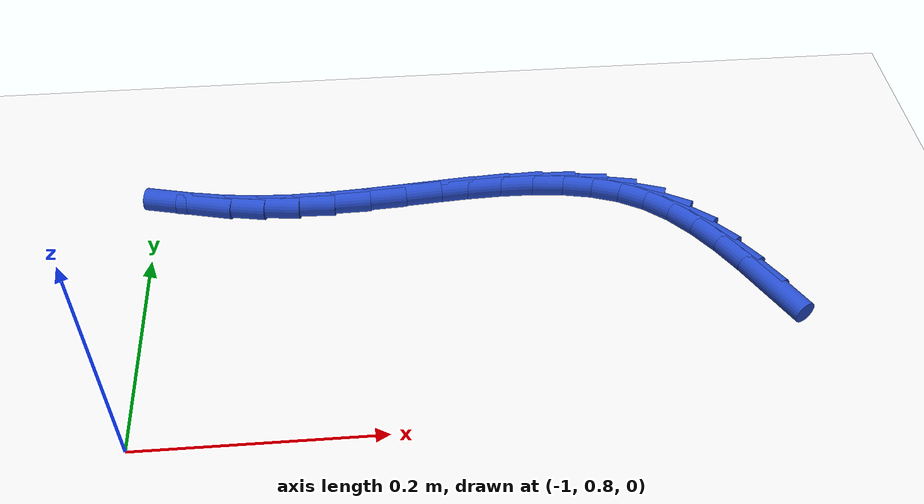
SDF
<sdf version="1.6">
 <world name="default">
  <model name="ground_plane">
   <static>1</static>
   <link name="link">
    <collision name="collision">
     <geometry><plane><normal>0 0 1</normal><size>100 100</size></plane></geometry>
     <surface><friction><ode><mu>100</mu><mu2>50</mu2></ode></friction></surface>
    </collision>
    <visual name="visual">
     <cast_shadows>0</cast_shadows>
     <geometry><plane><normal>0 0 1</normal><size>100 100</size></plane></geometry>
     <material>
      <script><uri>file://media/materials/scripts/gazebo.material</uri><name>Gazebo/WhiteGlow</name></script>
     </material>
    </visual>
   </link>
  </model>
  <model name="line">
   <link name="link_36">
    <pose>-0.47497138765835084 0.9221795700862281 0.01 0 1.57 -1.0694946534134544</pose>
    <collision name="collision">
     <geometry><cylinder><radius>0.01</radius><length>0.08</length></cylinder></geometry>
    </collision>
    <visual name="visual">
     <material>
      <script><name>Gazebo/Blue</name><uri>file://media/materials/scripts/gazebo.material</uri></script>
     </material>
     <geometry><cylinder><radius>0.01</radius><length>0.08</length></cylinder></geometry>
    </visual>
   </link>
   <link name="link_37">
    <pose>-0.48970142941198425 0.949059510149928 0.01 0 1.57 -1.0229506416498728</pose>
    <collision name="collision">
     <geometry><cylinder><radius>0.01</radius><length>0.08</length></cylinder></geometry>
    </collision>
    <visual name="visual">
     <material>
      <script><name>Gazebo/Blue</name><uri>file://media/materials/scripts/gazebo.material</uri></script>
     </material>
     <geometry><cylinder><radius>0.01</radius><length>0.08</length></cylinder></geometry>
    </visual>
   </link>
   <link name="link_38">
    <pose>-0.5051154790153239 0.9743224387573374 0.01 0 1.57 -0.9478539412121977</pose>
    <collision name="collision">
     <geometry><cylinder><radius>0.01</radius><length>0.08</length></cylinder></geometry>
    </collision>
    <visual name="visual">
     <material>
      <script><name>Gazebo/Blue</name><uri>file://media/materials/scripts/gazebo.material</uri></script>
     </material>
     <geometry><cylinder><radius>0.01</radius><length>0.08</length></cylinder></geometry>
    </visual>
   </link>
   <link name="link_39">
    <pose>-0.5216358255652217 0.9973197348024196 0.01 0 1.57 -0.8386915914948528</pose>
    <collision name="collision">
     <geometry><cylinder><radius>0.01</radius><length>0.08</length></cylinder></geometry>
    </collision>
    <visual name="visual">
     <material>
      <script><name>Gazebo/Blue</name><uri>file://media/materials/scripts/gazebo.material</uri></script>
     </material>
     <geometry><cylinder><radius>0.01</radius><length>0.08</length></cylinder></geometry>
    </visual>
   </link>
   <link name="link_40">
    <pose>-0.5396847581585293 1.017402777179138 0.01 0 1.57 -0.6904044710407707</pose>
    <collision name="collision">
     <geometry><cylinder><radius>0.01</radius><length>0.08</length></cylinder></geometry>
    </collision>
    <visual name="visual">
     <material>
      <script><name>Gazebo/Blue</name><uri>file://media/materials/scripts/gazebo.material</uri></script>
     </material>
     <geometry><cylinder><radius>0.01</radius><length>0.08</length></cylinder></geometry>
    </visual>
   </link>
   <link name="link_41">
    <pose>-0.5596845658920985 1.0339229447814557 0.01 0 1.57 -0.5077230441998889</pose>
    <collision name="collision">
     <geometry><cylinder><radius>0.01</radius><length>0.08</length></cylinder></geometry>
    </collision>
    <visual name="visual">
     <material>
      <script><name>Gazebo/Blue</name><uri>file://media/materials/scripts/gazebo.material</uri></script>
     </material>
     <geometry><cylinder><radius>0.01</radius><length>0.08</length></cylinder></geometry>
    </visual>
   </link>
   <link name="link_42">
    <pose>-0.5819964599935963 1.0463366833250862 0.01 0 1.57 -0.33475441965120206</pose>
    <collision name="collision">
     <geometry><cylinder><radius>0.01</radius><length>0.08</length></cylinder></geometry>
    </collision>
    <visual name="visual">
     <material>
      <script><name>Gazebo/Blue</name><uri>file://media/materials/scripts/gazebo.material</uri></script>
     </material>
     <geometry><cylinder><radius>0.01</radius><length>0.08</length></cylinder></geometry>
    </visual>
   </link>
   <link name="link_43">
    <pose>-0.6065332893854085 1.0548717162903005 0.01 0 1.57 -0.19495138236947562</pose>
    <collision name="collision">
     <geometry><cylinder><radius>0.01</radius><length>0.08</length></cylinder></geometry>
    </collision>
    <visual name="visual">
     <material>
      <script><name>Gazebo/Blue</name><uri>file://media/materials/scripts/gazebo.material</uri></script>
     </material>
     <geometry><cylinder><radius>0.01</radius><length>0.08</length></cylinder></geometry>
    </visual>
   </link>
   <link name="link_44">
    <pose>-0.6330081296176658 1.0600994195076165 0.01 0 1.57 -0.08842044995669045</pose>
    <collision name="collision">
     <geometry><cylinder><radius>0.01</radius><length>0.08</length></cylinder></geometry>
    </collision>
    <visual name="visual">
     <material>
      <script><name>Gazebo/Blue</name><uri>file://media/materials/scripts/gazebo.material</uri></script>
     </material>
     <geometry><cylinder><radius>0.01</radius><length>0.08</length></cylinder></geometry>
    </visual>
   </link>
   <link name="link_45">
    <pose>-0.6611331390091282 1.0625927466390317 0.01 0 1.57 -0.011255363388057046</pose>
    <collision name="collision">
     <geometry><cylinder><radius>0.01</radius><length>0.08</length></cylinder></geometry>
    </collision>
    <visual name="visual">
     <material>
      <script><name>Gazebo/Blue</name><uri>file://media/materials/scripts/gazebo.material</uri></script>
     </material>
     <geometry><cylinder><radius>0.01</radius><length>0.08</length></cylinder></geometry>
    </visual>
   </link>
   <link name="link_46">
    <pose>-0.6906204758785567 1.0629246513465456 0.01 0 1.57 0.041092336631190975</pose>
    <collision name="collision">
     <geometry><cylinder><radius>0.01</radius><length>0.08</length></cylinder></geometry>
    </collision>
    <visual name="visual">
     <material>
      <script><name>Gazebo/Blue</name><uri>file://media/materials/scripts/gazebo.material</uri></script>
     </material>
     <geometry><cylinder><radius>0.01</radius><length>0.08</length></cylinder></geometry>
    </visual>
   </link>
   <link name="link_47">
    <pose>-0.7211822985447117 1.0616680872921556 0.01 0 1.57 0.0723516460611456</pose>
    <collision name="collision">
     <geometry><cylinder><radius>0.01</radius><length>0.08</length></cylinder></geometry>
    </collision>
    <visual name="visual">
     <material>
      <script><name>Gazebo/Blue</name><uri>file://media/materials/scripts/gazebo.material</uri></script>
     </material>
     <geometry><cylinder><radius>0.01</radius><length>0.08</length></cylinder></geometry>
    </visual>
   </link>
   <link name="link_48">
    <pose>-0.7525307653263539 1.0593960081378606 0.01 0 1.57 0.08503380484491192</pose>
    <collision name="collision">
     <geometry><cylinder><radius>0.01</radius><length>0.08</length></cylinder></geometry>
    </collision>
    <visual name="visual">
     <material>
      <script><name>Gazebo/Blue</name><uri>file://media/materials/scripts/gazebo.material</uri></script>
     </material>
     <geometry><cylinder><radius>0.01</radius><length>0.08</length></cylinder></geometry>
    </visual>
   </link>
   <link name="link_49">
    <pose>-0.7843780345422435 1.0566813675456592 0.01 0 1.57 0.08043714475463372</pose>
    <collision name="collision">
     <geometry><cylinder><radius>0.01</radius><length>0.08</length></cylinder></geometry>
    </collision>
    <visual name="visual">
     <material>
      <script><name>Gazebo/Blue</name><uri>file://media/materials/scripts/gazebo.material</uri></script>
     </material>
     <geometry><cylinder><radius>0.01</radius><length>0.08</length></cylinder></geometry>
    </visual>
   </link>
   <link name="link_50">
    <pose>-0.816436264511142 1.0540971191775501 0.01 0 1.57 0.058744812370201585</pose>
    <collision name="collision">
     <geometry><cylinder><radius>0.01</radius><length>0.08</length></cylinder></geometry>
    </collision>
    <visual name="visual">
     <material>
      <script><name>Gazebo/Blue</name><uri>file://media/materials/scripts/gazebo.material</uri></script>
     </material>
     <geometry><cylinder><radius>0.01</radius><length>0.08</length></cylinder></geometry>
    </visual>
   </link>
   <link name="link_51">
    <pose>-0.8484176135518091 1.052216216695531 0.01 0 1.57 0.019120612154705993</pose>
    <collision name="collision">
     <geometry><cylinder><radius>0.01</radius><length>0.08</length></cylinder></geometry>
    </collision>
    <visual name="visual">
     <material>
      <script><name>Gazebo/Blue</name><uri>file://media/materials/scripts/gazebo.material</uri></script>
     </material>
     <geometry><cylinder><radius>0.01</radius><length>0.08</length></cylinder></geometry>
    </visual>
   </link>
   <link name="link_52">
    <pose>-0.880034239983006 1.0516116137616012 0.01 0 1.57 -0.04017497977391452</pose>
    <collision name="collision">
     <geometry><cylinder><radius>0.01</radius><length>0.08</length></cylinder></geometry>
    </collision>
    <visual name="visual">
     <material>
      <script><name>Gazebo/Blue</name><uri>file://media/materials/scripts/gazebo.material</uri></script>
     </material>
     <geometry><cylinder><radius>0.01</radius><length>0.08</length></cylinder></geometry>
    </visual>
   </link>
   <link name="link_53">
    <pose>-0.9109983021234928 1.0528562640377586 0.01 0 1.57 -0.11595838396832246</pose>
    <collision name="collision">
     <geometry><cylinder><radius>0.01</radius><length>0.08</length></cylinder></geometry>
    </collision>
    <visual name="visual">
     <material>
      <script><name>Gazebo/Blue</name><uri>file://media/materials/scripts/gazebo.material</uri></script>
     </material>
     <geometry><cylinder><radius>0.01</radius><length>0.08</length></cylinder></geometry>
    </visual>
   </link>
   <link name="link_54">
    <pose>-0.9410908269717277 1.0563614694259793 0.01 0 1.57 -0.1829352062556781</pose>
    <collision name="collision">
     <geometry><cylinder><radius>0.01</radius><length>0.08</length></cylinder></geometry>
    </collision>
    <visual name="visual">
     <material>
      <script><name>Gazebo/Blue</name><uri>file://media/materials/scripts/gazebo.material</uri></script>
     </material>
     <geometry><cylinder><radius>0.01</radius><length>0.08</length></cylinder></geometry>
    </visual>
   </link>
   <link name="link_55">
    <pose>-0.9704133416913429 1.0617862389715136 0.01 0 1.57 -0.23177026849941898</pose>
    <collision name="collision">
     <geometry><cylinder><radius>0.01</radius><length>0.08</length></cylinder></geometry>
    </collision>
    <visual name="visual">
     <material>
      <script><name>Gazebo/Blue</name><uri>file://media/materials/scripts/gazebo.material</uri></script>
     </material>
     <geometry><cylinder><radius>0.01</radius><length>0.08</length></cylinder></geometry>
    </visual>
   </link>
  </model>
 </world>
</sdf>
